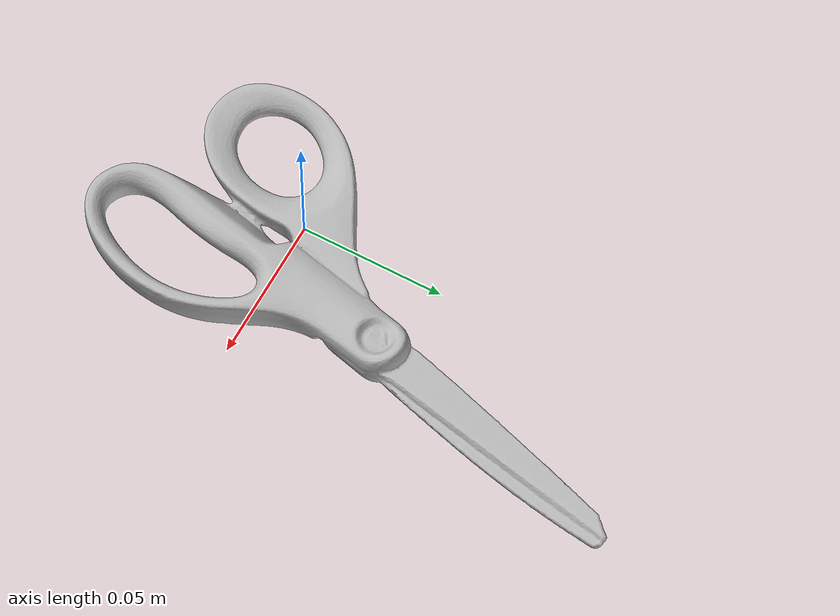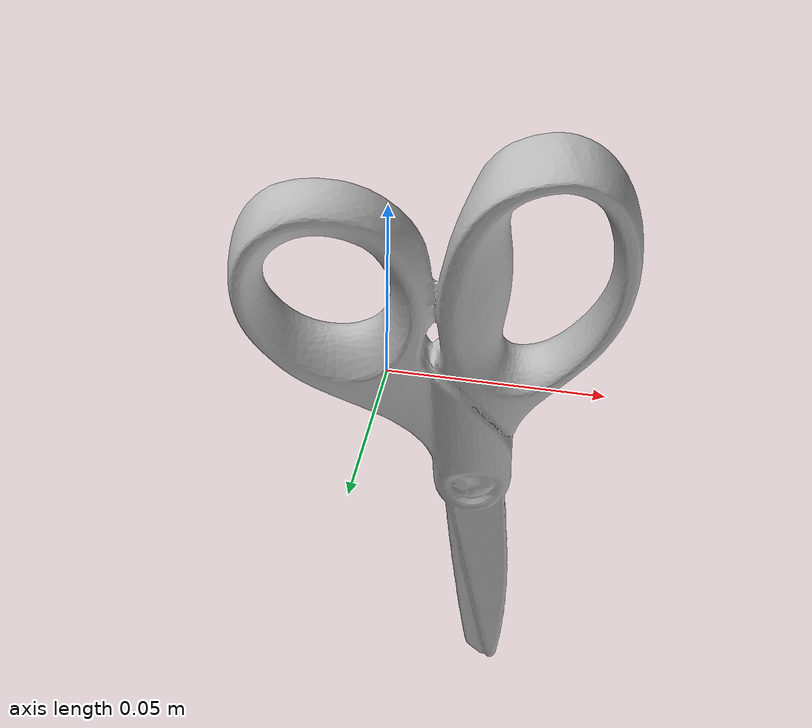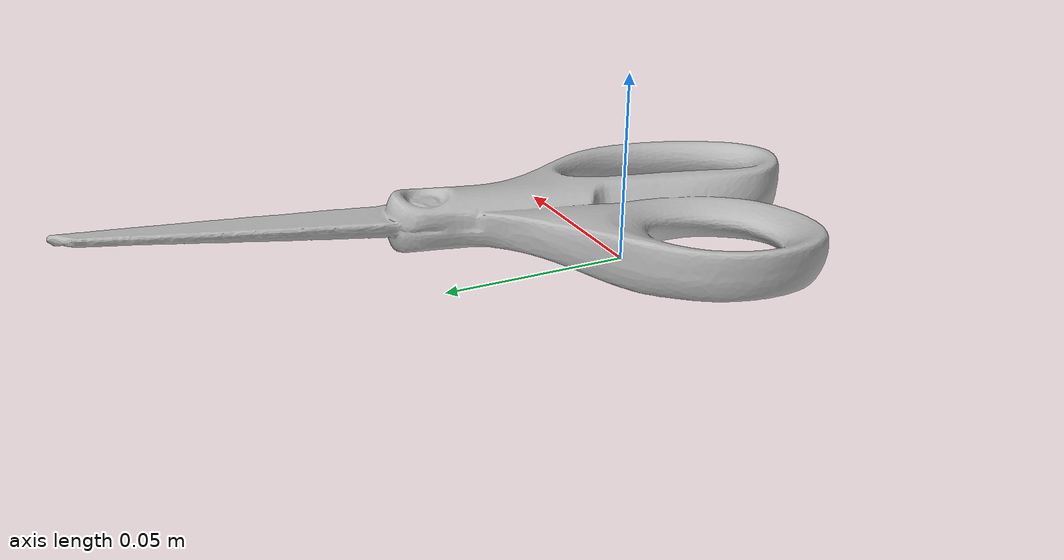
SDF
<?xml version='1.0'?>
<sdf version="1.4">
  <model name="scissors">
    <static>false</static>
    <link name="link">
      <inertial>
        <pose>0.014591521718079741 0.0031621364077388443 0.007400674371156582 1.1124705759062012 -1.5590402390897191 -2.9935291444767884</pose>
        <mass>4.680136717925133e-05</mass>
        <inertia>
          <ixx>8.69433186093704e-08</ixx>
          <ixy>9.509673821330551e-25</ixy>
          <ixz>-4.767925485666365e-24</ixz>
          <iyy>7.10209625183146e-08</iyy>
          <iyz>-2.7542475664851348e-24</iyz>
          <izz>1.693256625130799e-08</izz>
        </inertia>
      </inertial>
      <collision name="collision">
        <geometry>
          <mesh>
            <!-- Use a downsampled mesh for collisions -->
            <uri>model://037_scissors/google_16k/037_scissors.obj</uri>
            </mesh>
        </geometry>
        <surface>
          <friction>
            <ode>
              <mu>0.9</mu>
              <mu2>0.9</mu2>
            </ode>
          </friction>
          <contact>
            <ode>
              <kp>1000000000000.0</kp>
              <kd>1</kd>
              <min_depth>0.0001</min_depth>
              <max_vel>0.01</max_vel>
            </ode>
          </contact>
          <bounce>
            <restitution_coefficient>0.1</restitution_coefficient>
            <threshold>1000.0</threshold>
          </bounce>
        </surface>
      </collision>
      <visual name="visual">
        <geometry>
          <mesh>
            <uri>model://037_scissors/google_16k/037_scissors.dae</uri>
            </mesh>
        </geometry>
      </visual>
    </link>
  </model>
</sdf>
